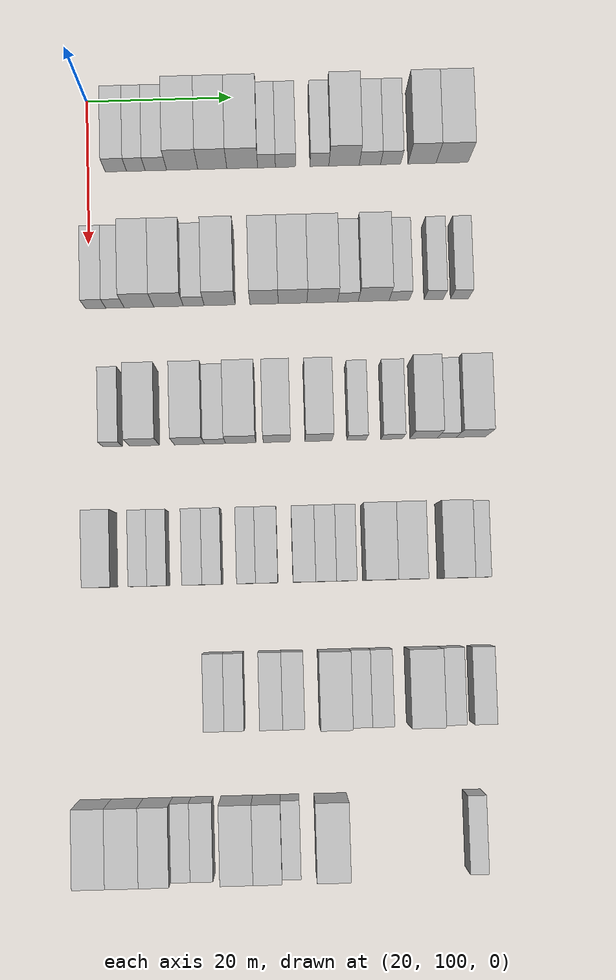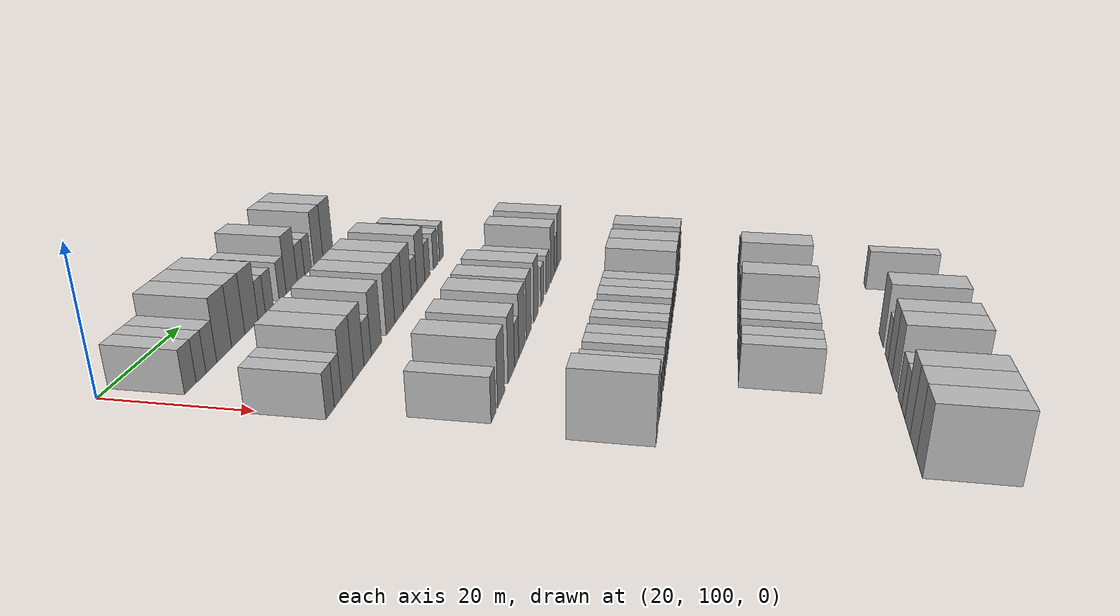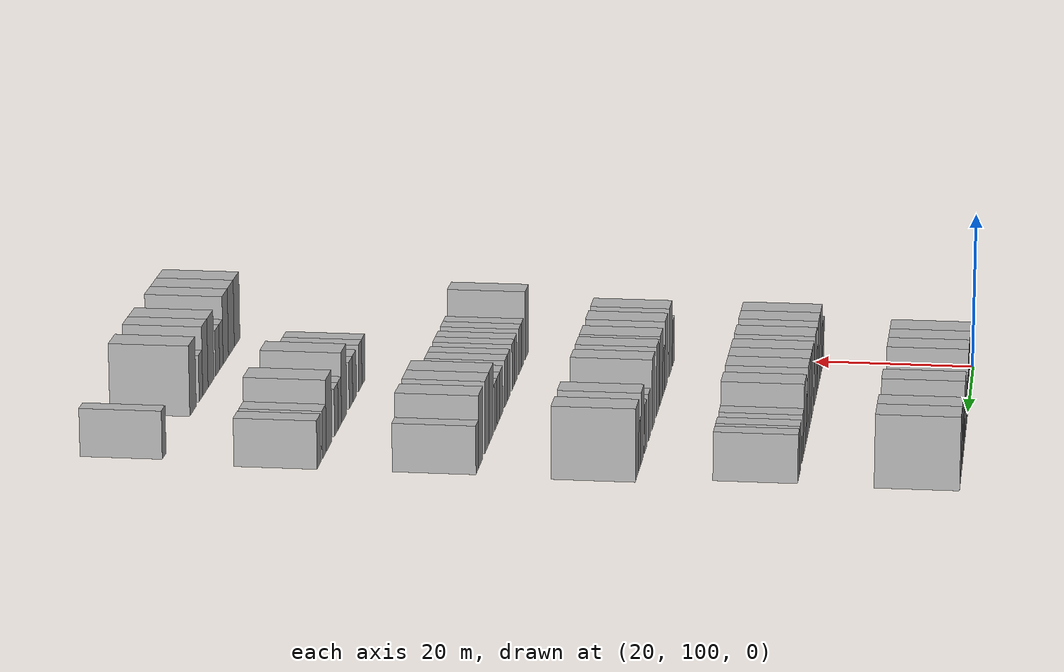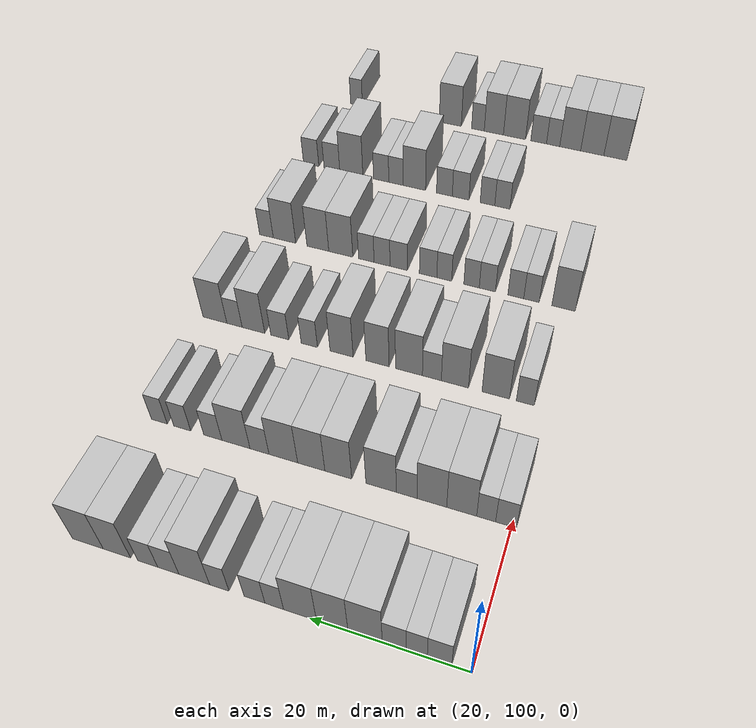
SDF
<sdf version="1.6">
 <world name="default">
  <model name="building_117">
   <static>1</static>
   <pose>25.0000 103.8893 0 0.000000 0.000000 0.000000</pose>
   <link name="link">
    <pose>0 0 3.00 0 0 0</pose>
    <collision name="collision"><geometry><box><size>10.0000 2.9440 6.0000</size></box></geometry></collision>
    <visual name="visual">
     <cast_shadows>0</cast_shadows>
     <geometry><box><size>10.0000 2.9440 6.0000</size></box></geometry>
     <material>
      <script>
       <uri>model://HANNAS_wall/materials/scripts</uri>
       <uri>model://HANNAS_wall/materials/textures</uri>
       <name>vrc/HANNAS_wall</name>
      </script>
     </material>
    </visual>
   </link>
  </model>
  <model name="building_118">
   <static>1</static>
   <pose>25.0000 106.6412 0 0.000000 0.000000 0.000000</pose>
   <link name="link">
    <pose>0 0 3.00 0 0 0</pose>
    <collision name="collision"><geometry><box><size>10.0000 2.5597 6.0000</size></box></geometry></collision>
    <visual name="visual">
     <cast_shadows>0</cast_shadows>
     <geometry><box><size>10.0000 2.5597 6.0000</size></box></geometry>
     <material>
      <script>
       <uri>model://HANNAS_wall/materials/scripts</uri>
       <uri>model://HANNAS_wall/materials/textures</uri>
       <name>vrc/HANNAS_wall</name>
      </script>
     </material>
    </visual>
   </link>
  </model>
  <model name="building_119">
   <static>1</static>
   <pose>25.0000 109.3910 0 0.000000 0.000000 0.000000</pose>
   <link name="link">
    <pose>0 0 3.00 0 0 0</pose>
    <collision name="collision"><geometry><box><size>10.0000 2.9399 6.0000</size></box></geometry></collision>
    <visual name="visual">
     <cast_shadows>0</cast_shadows>
     <geometry><box><size>10.0000 2.9399 6.0000</size></box></geometry>
     <material>
      <script>
       <uri>model://HANNAS_wall/materials/scripts</uri>
       <uri>model://HANNAS_wall/materials/textures</uri>
       <name>vrc/HANNAS_wall</name>
      </script>
     </material>
    </visual>
   </link>
  </model>
  <model name="building_120">
   <static>1</static>
   <pose>25.0000 113.0023 0 0.000000 0.000000 0.000000</pose>
   <link name="link">
    <pose>0 0 4.50 0 0 0</pose>
    <collision name="collision"><geometry><box><size>10.0000 4.2828 9.0000</size></box></geometry></collision>
    <visual name="visual">
     <cast_shadows>0</cast_shadows>
     <geometry><box><size>10.0000 4.2828 9.0000</size></box></geometry>
     <material>
      <script>
       <uri>model://HANNAS_wall/materials/scripts</uri>
       <uri>model://HANNAS_wall/materials/textures</uri>
       <name>vrc/HANNAS_wall</name>
      </script>
     </material>
    </visual>
   </link>
  </model>
  <model name="building_121">
   <static>1</static>
   <pose>25.0000 117.1433 0 0.000000 0.000000 0.000000</pose>
   <link name="link">
    <pose>0 0 4.50 0 0 0</pose>
    <collision name="collision"><geometry><box><size>10.0000 3.9991 9.0000</size></box></geometry></collision>
    <visual name="visual">
     <cast_shadows>0</cast_shadows>
     <geometry><box><size>10.0000 3.9991 9.0000</size></box></geometry>
     <material>
      <script>
       <uri>model://HANNAS_wall/materials/scripts</uri>
       <uri>model://HANNAS_wall/materials/textures</uri>
       <name>vrc/HANNAS_wall</name>
      </script>
     </material>
    </visual>
   </link>
  </model>
  <model name="building_122">
   <static>1</static>
   <pose>25.0000 121.2584 0 0.000000 0.000000 0.000000</pose>
   <link name="link">
    <pose>0 0 4.50 0 0 0</pose>
    <collision name="collision"><geometry><box><size>10.0000 4.2312 9.0000</size></box></geometry></collision>
    <visual name="visual">
     <cast_shadows>0</cast_shadows>
     <geometry><box><size>10.0000 4.2312 9.0000</size></box></geometry>
     <material>
      <script>
       <uri>model://HANNAS_wall/materials/scripts</uri>
       <uri>model://HANNAS_wall/materials/textures</uri>
       <name>vrc/HANNAS_wall</name>
      </script>
     </material>
    </visual>
   </link>
  </model>
  <model name="building_123">
   <static>1</static>
   <pose>25.0000 124.5934 0 0.000000 0.000000 0.000000</pose>
   <link name="link">
    <pose>0 0 3.00 0 0 0</pose>
    <collision name="collision"><geometry><box><size>10.0000 2.4387 6.0000</size></box></geometry></collision>
    <visual name="visual">
     <cast_shadows>0</cast_shadows>
     <geometry><box><size>10.0000 2.4387 6.0000</size></box></geometry>
     <material>
      <script>
       <uri>model://HANNAS_wall/materials/scripts</uri>
       <uri>model://HANNAS_wall/materials/textures</uri>
       <name>vrc/HANNAS_wall</name>
      </script>
     </material>
    </visual>
   </link>
  </model>
  <model name="building_124">
   <static>1</static>
   <pose>25.0000 127.1882 0 0.000000 0.000000 0.000000</pose>
   <link name="link">
    <pose>0 0 3.00 0 0 0</pose>
    <collision name="collision"><geometry><box><size>10.0000 2.7509 6.0000</size></box></geometry></collision>
    <visual name="visual">
     <cast_shadows>0</cast_shadows>
     <geometry><box><size>10.0000 2.7509 6.0000</size></box></geometry>
     <material>
      <script>
       <uri>model://HANNAS_wall/materials/scripts</uri>
       <uri>model://HANNAS_wall/materials/textures</uri>
       <name>vrc/HANNAS_wall</name>
      </script>
     </material>
    </visual>
   </link>
  </model>
  <model name="building_125">
   <static>1</static>
   <pose>25.0000 131.8658 0 0.000000 0.000000 0.000000</pose>
   <link name="link">
    <pose>0 0 3.00 0 0 0</pose>
    <collision name="collision"><geometry><box><size>10.0000 2.6044 6.0000</size></box></geometry></collision>
    <visual name="visual">
     <cast_shadows>0</cast_shadows>
     <geometry><box><size>10.0000 2.6044 6.0000</size></box></geometry>
     <material>
      <script>
       <uri>model://HANNAS_wall/materials/scripts</uri>
       <uri>model://HANNAS_wall/materials/textures</uri>
       <name>vrc/HANNAS_wall</name>
      </script>
     </material>
    </visual>
   </link>
  </model>
  <model name="building_126">
   <static>1</static>
   <pose>25.0000 135.2582 0 0.000000 0.000000 0.000000</pose>
   <link name="link">
    <pose>0 0 4.50 0 0 0</pose>
    <collision name="collision"><geometry><box><size>10.0000 4.1804 9.0000</size></box></geometry></collision>
    <visual name="visual">
     <cast_shadows>0</cast_shadows>
     <geometry><box><size>10.0000 4.1804 9.0000</size></box></geometry>
     <material>
      <script>
       <uri>model://HANNAS_wall/materials/scripts</uri>
       <uri>model://HANNAS_wall/materials/textures</uri>
       <name>vrc/HANNAS_wall</name>
      </script>
     </material>
    </visual>
   </link>
  </model>
  <model name="building_127">
   <static>1</static>
   <pose>25.0000 138.8129 0 0.000000 0.000000 0.000000</pose>
   <link name="link">
    <pose>0 0 3.00 0 0 0</pose>
    <collision name="collision"><geometry><box><size>10.0000 2.9291 6.0000</size></box></geometry></collision>
    <visual name="visual">
     <cast_shadows>0</cast_shadows>
     <geometry><box><size>10.0000 2.9291 6.0000</size></box></geometry>
     <material>
      <script>
       <uri>model://HANNAS_wall/materials/scripts</uri>
       <uri>model://HANNAS_wall/materials/textures</uri>
       <name>vrc/HANNAS_wall</name>
      </script>
     </material>
    </visual>
   </link>
  </model>
  <model name="building_128">
   <static>1</static>
   <pose>25.0000 141.6678 0 0.000000 0.000000 0.000000</pose>
   <link name="link">
    <pose>0 0 3.00 0 0 0</pose>
    <collision name="collision"><geometry><box><size>10.0000 2.7806 6.0000</size></box></geometry></collision>
    <visual name="visual">
     <cast_shadows>0</cast_shadows>
     <geometry><box><size>10.0000 2.7806 6.0000</size></box></geometry>
     <material>
      <script>
       <uri>model://HANNAS_wall/materials/scripts</uri>
       <uri>model://HANNAS_wall/materials/textures</uri>
       <name>vrc/HANNAS_wall</name>
      </script>
     </material>
    </visual>
   </link>
  </model>
  <model name="building_129">
   <static>1</static>
   <pose>25.0000 145.9909 0 0.000000 0.000000 0.000000</pose>
   <link name="link">
    <pose>0 0 4.50 0 0 0</pose>
    <collision name="collision"><geometry><box><size>10.0000 3.8657 9.0000</size></box></geometry></collision>
    <visual name="visual">
     <cast_shadows>0</cast_shadows>
     <geometry><box><size>10.0000 3.8657 9.0000</size></box></geometry>
     <material>
      <script>
       <uri>model://HANNAS_wall/materials/scripts</uri>
       <uri>model://HANNAS_wall/materials/textures</uri>
       <name>vrc/HANNAS_wall</name>
      </script>
     </material>
    </visual>
   </link>
  </model>
  <model name="building_130">
   <static>1</static>
   <pose>25.0000 150.1322 0 0.000000 0.000000 0.000000</pose>
   <link name="link">
    <pose>0 0 4.50 0 0 0</pose>
    <collision name="collision"><geometry><box><size>10.0000 4.4169 9.0000</size></box></geometry></collision>
    <visual name="visual">
     <cast_shadows>0</cast_shadows>
     <geometry><box><size>10.0000 4.4169 9.0000</size></box></geometry>
     <material>
      <script>
       <uri>model://HANNAS_wall/materials/scripts</uri>
       <uri>model://HANNAS_wall/materials/textures</uri>
       <name>vrc/HANNAS_wall</name>
      </script>
     </material>
    </visual>
   </link>
  </model>
  <model name="building_282">
   <static>1</static>
   <pose>44.0000 100.8136 0 0.000000 0.000000 0.000000</pose>
   <link name="link">
    <pose>0 0 3.00 0 0 0</pose>
    <collision name="collision"><geometry><box><size>10.0000 2.7490 6.0000</size></box></geometry></collision>
    <visual name="visual">
     <cast_shadows>0</cast_shadows>
     <geometry><box><size>10.0000 2.7490 6.0000</size></box></geometry>
     <material>
      <script>
       <uri>model://HANNAS_wall/materials/scripts</uri>
       <uri>model://HANNAS_wall/materials/textures</uri>
       <name>vrc/HANNAS_wall</name>
      </script>
     </material>
    </visual>
   </link>
  </model>
  <model name="building_283">
   <static>1</static>
   <pose>44.0000 103.4413 0 0.000000 0.000000 0.000000</pose>
   <link name="link">
    <pose>0 0 3.00 0 0 0</pose>
    <collision name="collision"><geometry><box><size>10.0000 2.5063 6.0000</size></box></geometry></collision>
    <visual name="visual">
     <cast_shadows>0</cast_shadows>
     <geometry><box><size>10.0000 2.5063 6.0000</size></box></geometry>
     <material>
      <script>
       <uri>model://HANNAS_wall/materials/scripts</uri>
       <uri>model://HANNAS_wall/materials/textures</uri>
       <name>vrc/HANNAS_wall</name>
      </script>
     </material>
    </visual>
   </link>
  </model>
  <model name="building_284">
   <static>1</static>
   <pose>44.0000 106.7073 0 0.000000 0.000000 0.000000</pose>
   <link name="link">
    <pose>0 0 4.50 0 0 0</pose>
    <collision name="collision"><geometry><box><size>10.0000 4.0258 9.0000</size></box></geometry></collision>
    <visual name="visual">
     <cast_shadows>0</cast_shadows>
     <geometry><box><size>10.0000 4.0258 9.0000</size></box></geometry>
     <material>
      <script>
       <uri>model://HANNAS_wall/materials/scripts</uri>
       <uri>model://HANNAS_wall/materials/textures</uri>
       <name>vrc/HANNAS_wall</name>
      </script>
     </material>
    </visual>
   </link>
  </model>
  <model name="building_285">
   <static>1</static>
   <pose>44.0000 110.7387 0 0.000000 0.000000 0.000000</pose>
   <link name="link">
    <pose>0 0 4.50 0 0 0</pose>
    <collision name="collision"><geometry><box><size>10.0000 4.0370 9.0000</size></box></geometry></collision>
    <visual name="visual">
     <cast_shadows>0</cast_shadows>
     <geometry><box><size>10.0000 4.0370 9.0000</size></box></geometry>
     <material>
      <script>
       <uri>model://HANNAS_wall/materials/scripts</uri>
       <uri>model://HANNAS_wall/materials/textures</uri>
       <name>vrc/HANNAS_wall</name>
      </script>
     </material>
    </visual>
   </link>
  </model>
  <model name="building_286">
   <static>1</static>
   <pose>44.0000 114.1866 0 0.000000 0.000000 0.000000</pose>
   <link name="link">
    <pose>0 0 3.00 0 0 0</pose>
    <collision name="collision"><geometry><box><size>10.0000 2.8586 6.0000</size></box></geometry></collision>
    <visual name="visual">
     <cast_shadows>0</cast_shadows>
     <geometry><box><size>10.0000 2.8586 6.0000</size></box></geometry>
     <material>
      <script>
       <uri>model://HANNAS_wall/materials/scripts</uri>
       <uri>model://HANNAS_wall/materials/textures</uri>
       <name>vrc/HANNAS_wall</name>
      </script>
     </material>
    </visual>
   </link>
  </model>
  <model name="building_287">
   <static>1</static>
   <pose>44.0000 117.7352 0 0.000000 0.000000 0.000000</pose>
   <link name="link">
    <pose>0 0 4.50 0 0 0</pose>
    <collision name="collision"><geometry><box><size>10.0000 4.2386 9.0000</size></box></geometry></collision>
    <visual name="visual">
     <cast_shadows>0</cast_shadows>
     <geometry><box><size>10.0000 4.2386 9.0000</size></box></geometry>
     <material>
      <script>
       <uri>model://HANNAS_wall/materials/scripts</uri>
       <uri>model://HANNAS_wall/materials/textures</uri>
       <name>vrc/HANNAS_wall</name>
      </script>
     </material>
    </visual>
   </link>
  </model>
  <model name="building_288">
   <static>1</static>
   <pose>44.0000 123.7677 0 0.000000 0.000000 0.000000</pose>
   <link name="link">
    <pose>0 0 4.50 0 0 0</pose>
    <collision name="collision"><geometry><box><size>10.0000 3.8264 9.0000</size></box></geometry></collision>
    <visual name="visual">
     <cast_shadows>0</cast_shadows>
     <geometry><box><size>10.0000 3.8264 9.0000</size></box></geometry>
     <material>
      <script>
       <uri>model://HANNAS_wall/materials/scripts</uri>
       <uri>model://HANNAS_wall/materials/textures</uri>
       <name>vrc/HANNAS_wall</name>
      </script>
     </material>
    </visual>
   </link>
  </model>
  <model name="building_289">
   <static>1</static>
   <pose>44.0000 127.6472 0 0.000000 0.000000 0.000000</pose>
   <link name="link">
    <pose>0 0 4.50 0 0 0</pose>
    <collision name="collision"><geometry><box><size>10.0000 3.9325 9.0000</size></box></geometry></collision>
    <visual name="visual">
     <cast_shadows>0</cast_shadows>
     <geometry><box><size>10.0000 3.9325 9.0000</size></box></geometry>
     <material>
      <script>
       <uri>model://HANNAS_wall/materials/scripts</uri>
       <uri>model://HANNAS_wall/materials/textures</uri>
       <name>vrc/HANNAS_wall</name>
      </script>
     </material>
    </visual>
   </link>
  </model>
  <model name="building_290">
   <static>1</static>
   <pose>44.0000 131.7123 0 0.000000 0.000000 0.000000</pose>
   <link name="link">
    <pose>0 0 4.50 0 0 0</pose>
    <collision name="collision"><geometry><box><size>10.0000 4.1976 9.0000</size></box></geometry></collision>
    <visual name="visual">
     <cast_shadows>0</cast_shadows>
     <geometry><box><size>10.0000 4.1976 9.0000</size></box></geometry>
     <material>
      <script>
       <uri>model://HANNAS_wall/materials/scripts</uri>
       <uri>model://HANNAS_wall/materials/textures</uri>
       <name>vrc/HANNAS_wall</name>
      </script>
     </material>
    </visual>
   </link>
  </model>
  <model name="building_291">
   <static>1</static>
   <pose>44.0000 135.2204 0 0.000000 0.000000 0.000000</pose>
   <link name="link">
    <pose>0 0 3.00 0 0 0</pose>
    <collision name="collision"><geometry><box><size>10.0000 2.8186 6.0000</size></box></geometry></collision>
    <visual name="visual">
     <cast_shadows>0</cast_shadows>
     <geometry><box><size>10.0000 2.8186 6.0000</size></box></geometry>
     <material>
      <script>
       <uri>model://HANNAS_wall/materials/scripts</uri>
       <uri>model://HANNAS_wall/materials/textures</uri>
       <name>vrc/HANNAS_wall</name>
      </script>
     </material>
    </visual>
   </link>
  </model>
  <model name="building_292">
   <static>1</static>
   <pose>44.0000 138.7312 0 0.000000 0.000000 0.000000</pose>
   <link name="link">
    <pose>0 0 4.50 0 0 0</pose>
    <collision name="collision"><geometry><box><size>10.0000 4.2031 9.0000</size></box></geometry></collision>
    <visual name="visual">
     <cast_shadows>0</cast_shadows>
     <geometry><box><size>10.0000 4.2031 9.0000</size></box></geometry>
     <material>
      <script>
       <uri>model://HANNAS_wall/materials/scripts</uri>
       <uri>model://HANNAS_wall/materials/textures</uri>
       <name>vrc/HANNAS_wall</name>
      </script>
     </material>
    </visual>
   </link>
  </model>
  <model name="building_293">
   <static>1</static>
   <pose>44.0000 142.2147 0 0.000000 0.000000 0.000000</pose>
   <link name="link">
    <pose>0 0 3.00 0 0 0</pose>
    <collision name="collision"><geometry><box><size>10.0000 2.7639 6.0000</size></box></geometry></collision>
    <visual name="visual">
     <cast_shadows>0</cast_shadows>
     <geometry><box><size>10.0000 2.7639 6.0000</size></box></geometry>
     <material>
      <script>
       <uri>model://HANNAS_wall/materials/scripts</uri>
       <uri>model://HANNAS_wall/materials/textures</uri>
       <name>vrc/HANNAS_wall</name>
      </script>
     </material>
    </visual>
   </link>
  </model>
  <model name="building_294">
   <static>1</static>
   <pose>44.0000 146.9058 0 0.000000 0.000000 0.000000</pose>
   <link name="link">
    <pose>0 0 3.00 0 0 0</pose>
    <collision name="collision"><geometry><box><size>10.0000 2.6184 6.0000</size></box></geometry></collision>
    <visual name="visual">
     <cast_shadows>0</cast_shadows>
     <geometry><box><size>10.0000 2.6184 6.0000</size></box></geometry>
     <material>
      <script>
       <uri>model://HANNAS_wall/materials/scripts</uri>
       <uri>model://HANNAS_wall/materials/textures</uri>
       <name>vrc/HANNAS_wall</name>
      </script>
     </material>
    </visual>
   </link>
  </model>
  <model name="building_295">
   <static>1</static>
   <pose>44.0000 150.4486 0 0.000000 0.000000 0.000000</pose>
   <link name="link">
    <pose>0 0 3.00 0 0 0</pose>
    <collision name="collision"><geometry><box><size>10.0000 2.4671 6.0000</size></box></geometry></collision>
    <visual name="visual">
     <cast_shadows>0</cast_shadows>
     <geometry><box><size>10.0000 2.4671 6.0000</size></box></geometry>
     <material>
      <script>
       <uri>model://HANNAS_wall/materials/scripts</uri>
       <uri>model://HANNAS_wall/materials/textures</uri>
       <name>vrc/HANNAS_wall</name>
      </script>
     </material>
    </visual>
   </link>
  </model>
  <model name="building_453">
   <static>1</static>
   <pose>63.0000 102.8185 0 0.000000 0.000000 0.000000</pose>
   <link name="link">
    <pose>0 0 3.00 0 0 0</pose>
    <collision name="collision"><geometry><box><size>10.0000 2.6042 6.0000</size></box></geometry></collision>
    <visual name="visual">
     <cast_shadows>0</cast_shadows>
     <geometry><box><size>10.0000 2.6042 6.0000</size></box></geometry>
     <material>
      <script>
       <uri>model://HANNAS_wall/materials/scripts</uri>
       <uri>model://HANNAS_wall/materials/textures</uri>
       <name>vrc/HANNAS_wall</name>
      </script>
     </material>
    </visual>
   </link>
  </model>
  <model name="building_454">
   <static>1</static>
   <pose>63.0000 107.1384 0 0.000000 0.000000 0.000000</pose>
   <link name="link">
    <pose>0 0 4.50 0 0 0</pose>
    <collision name="collision"><geometry><box><size>10.0000 4.0356 9.0000</size></box></geometry></collision>
    <visual name="visual">
     <cast_shadows>0</cast_shadows>
     <geometry><box><size>10.0000 4.0356 9.0000</size></box></geometry>
     <material>
      <script>
       <uri>model://HANNAS_wall/materials/scripts</uri>
       <uri>model://HANNAS_wall/materials/textures</uri>
       <name>vrc/HANNAS_wall</name>
      </script>
     </material>
    </visual>
   </link>
  </model>
  <model name="building_455">
   <static>1</static>
   <pose>63.0000 113.1920 0 0.000000 0.000000 0.000000</pose>
   <link name="link">
    <pose>0 0 4.50 0 0 0</pose>
    <collision name="collision"><geometry><box><size>10.0000 4.0717 9.0000</size></box></geometry></collision>
    <visual name="visual">
     <cast_shadows>0</cast_shadows>
     <geometry><box><size>10.0000 4.0717 9.0000</size></box></geometry>
     <material>
      <script>
       <uri>model://HANNAS_wall/materials/scripts</uri>
       <uri>model://HANNAS_wall/materials/textures</uri>
       <name>vrc/HANNAS_wall</name>
      </script>
     </material>
    </visual>
   </link>
  </model>
  <model name="building_456">
   <static>1</static>
   <pose>63.0000 116.6578 0 0.000000 0.000000 0.000000</pose>
   <link name="link">
    <pose>0 0 3.00 0 0 0</pose>
    <collision name="collision"><geometry><box><size>10.0000 2.8598 6.0000</size></box></geometry></collision>
    <visual name="visual">
     <cast_shadows>0</cast_shadows>
     <geometry><box><size>10.0000 2.8598 6.0000</size></box></geometry>
     <material>
      <script>
       <uri>model://HANNAS_wall/materials/scripts</uri>
       <uri>model://HANNAS_wall/materials/textures</uri>
       <name>vrc/HANNAS_wall</name>
      </script>
     </material>
    </visual>
   </link>
  </model>
  <model name="building_457">
   <static>1</static>
   <pose>63.0000 120.1425 0 0.000000 0.000000 0.000000</pose>
   <link name="link">
    <pose>0 0 4.50 0 0 0</pose>
    <collision name="collision"><geometry><box><size>10.0000 4.1096 9.0000</size></box></geometry></collision>
    <visual name="visual">
     <cast_shadows>0</cast_shadows>
     <geometry><box><size>10.0000 4.1096 9.0000</size></box></geometry>
     <material>
      <script>
       <uri>model://HANNAS_wall/materials/scripts</uri>
       <uri>model://HANNAS_wall/materials/textures</uri>
       <name>vrc/HANNAS_wall</name>
      </script>
     </material>
    </visual>
   </link>
  </model>
  <model name="building_458">
   <static>1</static>
   <pose>63.0000 125.0026 0 0.000000 0.000000 0.000000</pose>
   <link name="link">
    <pose>0 0 4.50 0 0 0</pose>
    <collision name="collision"><geometry><box><size>10.0000 3.6106 9.0000</size></box></geometry></collision>
    <visual name="visual">
     <cast_shadows>0</cast_shadows>
     <geometry><box><size>10.0000 3.6106 9.0000</size></box></geometry>
     <material>
      <script>
       <uri>model://HANNAS_wall/materials/scripts</uri>
       <uri>model://HANNAS_wall/materials/textures</uri>
       <name>vrc/HANNAS_wall</name>
      </script>
     </material>
    </visual>
   </link>
  </model>
  <model name="building_459">
   <static>1</static>
   <pose>63.0000 130.6389 0 0.000000 0.000000 0.000000</pose>
   <link name="link">
    <pose>0 0 4.50 0 0 0</pose>
    <collision name="collision"><geometry><box><size>10.0000 3.6619 9.0000</size></box></geometry></collision>
    <visual name="visual">
     <cast_shadows>0</cast_shadows>
     <geometry><box><size>10.0000 3.6619 9.0000</size></box></geometry>
     <material>
      <script>
       <uri>model://HANNAS_wall/materials/scripts</uri>
       <uri>model://HANNAS_wall/materials/textures</uri>
       <name>vrc/HANNAS_wall</name>
      </script>
     </material>
    </visual>
   </link>
  </model>
  <model name="building_460">
   <static>1</static>
   <pose>63.0000 135.7860 0 0.000000 0.000000 0.000000</pose>
   <link name="link">
    <pose>0 0 3.00 0 0 0</pose>
    <collision name="collision"><geometry><box><size>10.0000 2.6324 6.0000</size></box></geometry></collision>
    <visual name="visual">
     <cast_shadows>0</cast_shadows>
     <geometry><box><size>10.0000 2.6324 6.0000</size></box></geometry>
     <material>
      <script>
       <uri>model://HANNAS_wall/materials/scripts</uri>
       <uri>model://HANNAS_wall/materials/textures</uri>
       <name>vrc/HANNAS_wall</name>
      </script>
     </material>
    </visual>
   </link>
  </model>
  <model name="building_461">
   <static>1</static>
   <pose>63.0000 140.5695 0 0.000000 0.000000 0.000000</pose>
   <link name="link">
    <pose>0 0 3.00 0 0 0</pose>
    <collision name="collision"><geometry><box><size>10.0000 2.9345 6.0000</size></box></geometry></collision>
    <visual name="visual">
     <cast_shadows>0</cast_shadows>
     <geometry><box><size>10.0000 2.9345 6.0000</size></box></geometry>
     <material>
      <script>
       <uri>model://HANNAS_wall/materials/scripts</uri>
       <uri>model://HANNAS_wall/materials/textures</uri>
       <name>vrc/HANNAS_wall</name>
      </script>
     </material>
    </visual>
   </link>
  </model>
  <model name="building_462">
   <static>1</static>
   <pose>63.0000 144.9108 0 0.000000 0.000000 0.000000</pose>
   <link name="link">
    <pose>0 0 4.50 0 0 0</pose>
    <collision name="collision"><geometry><box><size>10.0000 3.7481 9.0000</size></box></geometry></collision>
    <visual name="visual">
     <cast_shadows>0</cast_shadows>
     <geometry><box><size>10.0000 3.7481 9.0000</size></box></geometry>
     <material>
      <script>
       <uri>model://HANNAS_wall/materials/scripts</uri>
       <uri>model://HANNAS_wall/materials/textures</uri>
       <name>vrc/HANNAS_wall</name>
      </script>
     </material>
    </visual>
   </link>
  </model>
  <model name="building_463">
   <static>1</static>
   <pose>63.0000 148.0643 0 0.000000 0.000000 0.000000</pose>
   <link name="link">
    <pose>0 0 3.00 0 0 0</pose>
    <collision name="collision"><geometry><box><size>10.0000 2.5590 6.0000</size></box></geometry></collision>
    <visual name="visual">
     <cast_shadows>0</cast_shadows>
     <geometry><box><size>10.0000 2.5590 6.0000</size></box></geometry>
     <material>
      <script>
       <uri>model://HANNAS_wall/materials/scripts</uri>
       <uri>model://HANNAS_wall/materials/textures</uri>
       <name>vrc/HANNAS_wall</name>
      </script>
     </material>
    </visual>
   </link>
  </model>
  <model name="building_464">
   <static>1</static>
   <pose>63.0000 151.3480 0 0.000000 0.000000 0.000000</pose>
   <link name="link">
    <pose>0 0 4.50 0 0 0</pose>
    <collision name="collision"><geometry><box><size>10.0000 4.0084 9.0000</size></box></geometry></collision>
    <visual name="visual">
     <cast_shadows>0</cast_shadows>
     <geometry><box><size>10.0000 4.0084 9.0000</size></box></geometry>
     <material>
      <script>
       <uri>model://HANNAS_wall/materials/scripts</uri>
       <uri>model://HANNAS_wall/materials/textures</uri>
       <name>vrc/HANNAS_wall</name>
      </script>
     </material>
    </visual>
   </link>
  </model>
  <model name="building_630">
   <static>1</static>
   <pose>82.0000 101.3021 0 0.000000 0.000000 0.000000</pose>
   <link name="link">
    <pose>0 0 4.50 0 0 0</pose>
    <collision name="collision"><geometry><box><size>10.0000 3.6711 9.0000</size></box></geometry></collision>
    <visual name="visual">
     <cast_shadows>0</cast_shadows>
     <geometry><box><size>10.0000 3.6711 9.0000</size></box></geometry>
     <material>
      <script>
       <uri>model://HANNAS_wall/materials/scripts</uri>
       <uri>model://HANNAS_wall/materials/textures</uri>
       <name>vrc/HANNAS_wall</name>
      </script>
     </material>
    </visual>
   </link>
  </model>
  <model name="building_631">
   <static>1</static>
   <pose>82.0000 106.3619 0 0.000000 0.000000 0.000000</pose>
   <link name="link">
    <pose>0 0 3.00 0 0 0</pose>
    <collision name="collision"><geometry><box><size>10.0000 2.4485 6.0000</size></box></geometry></collision>
    <visual name="visual">
     <cast_shadows>0</cast_shadows>
     <geometry><box><size>10.0000 2.4485 6.0000</size></box></geometry>
     <material>
      <script>
       <uri>model://HANNAS_wall/materials/scripts</uri>
       <uri>model://HANNAS_wall/materials/textures</uri>
       <name>vrc/HANNAS_wall</name>
      </script>
     </material>
    </visual>
   </link>
  </model>
  <model name="building_632">
   <static>1</static>
   <pose>82.0000 108.8607 0 0.000000 0.000000 0.000000</pose>
   <link name="link">
    <pose>0 0 3.00 0 0 0</pose>
    <collision name="collision"><geometry><box><size>10.0000 2.5491 6.0000</size></box></geometry></collision>
    <visual name="visual">
     <cast_shadows>0</cast_shadows>
     <geometry><box><size>10.0000 2.5491 6.0000</size></box></geometry>
     <material>
      <script>
       <uri>model://HANNAS_wall/materials/scripts</uri>
       <uri>model://HANNAS_wall/materials/textures</uri>
       <name>vrc/HANNAS_wall</name>
      </script>
     </material>
    </visual>
   </link>
  </model>
  <model name="building_633">
   <static>1</static>
   <pose>82.0000 113.4495 0 0.000000 0.000000 0.000000</pose>
   <link name="link">
    <pose>0 0 3.00 0 0 0</pose>
    <collision name="collision"><geometry><box><size>10.0000 2.6284 6.0000</size></box></geometry></collision>
    <visual name="visual">
     <cast_shadows>0</cast_shadows>
     <geometry><box><size>10.0000 2.6284 6.0000</size></box></geometry>
     <material>
      <script>
       <uri>model://HANNAS_wall/materials/scripts</uri>
       <uri>model://HANNAS_wall/materials/textures</uri>
       <name>vrc/HANNAS_wall</name>
      </script>
     </material>
    </visual>
   </link>
  </model>
  <model name="building_634">
   <static>1</static>
   <pose>82.0000 116.0262 0 0.000000 0.000000 0.000000</pose>
   <link name="link">
    <pose>0 0 3.00 0 0 0</pose>
    <collision name="collision"><geometry><box><size>10.0000 2.5250 6.0000</size></box></geometry></collision>
    <visual name="visual">
     <cast_shadows>0</cast_shadows>
     <geometry><box><size>10.0000 2.5250 6.0000</size></box></geometry>
     <material>
      <script>
       <uri>model://HANNAS_wall/materials/scripts</uri>
       <uri>model://HANNAS_wall/materials/textures</uri>
       <name>vrc/HANNAS_wall</name>
      </script>
     </material>
    </visual>
   </link>
  </model>
  <model name="building_635">
   <static>1</static>
   <pose>82.0000 120.5225 0 0.000000 0.000000 0.000000</pose>
   <link name="link">
    <pose>0 0 3.00 0 0 0</pose>
    <collision name="collision"><geometry><box><size>10.0000 2.4677 6.0000</size></box></geometry></collision>
    <visual name="visual">
     <cast_shadows>0</cast_shadows>
     <geometry><box><size>10.0000 2.4677 6.0000</size></box></geometry>
     <material>
      <script>
       <uri>model://HANNAS_wall/materials/scripts</uri>
       <uri>model://HANNAS_wall/materials/textures</uri>
       <name>vrc/HANNAS_wall</name>
      </script>
     </material>
    </visual>
   </link>
  </model>
  <model name="building_636">
   <static>1</static>
   <pose>82.0000 123.2142 0 0.000000 0.000000 0.000000</pose>
   <link name="link">
    <pose>0 0 3.00 0 0 0</pose>
    <collision name="collision"><geometry><box><size>10.0000 2.9156 6.0000</size></box></geometry></collision>
    <visual name="visual">
     <cast_shadows>0</cast_shadows>
     <geometry><box><size>10.0000 2.9156 6.0000</size></box></geometry>
     <material>
      <script>
       <uri>model://HANNAS_wall/materials/scripts</uri>
       <uri>model://HANNAS_wall/materials/textures</uri>
       <name>vrc/HANNAS_wall</name>
      </script>
     </material>
    </visual>
   </link>
  </model>
  <model name="building_637">
   <static>1</static>
   <pose>82.0000 128.1516 0 0.000000 0.000000 0.000000</pose>
   <link name="link">
    <pose>0 0 3.00 0 0 0</pose>
    <collision name="collision"><geometry><box><size>10.0000 2.9593 6.0000</size></box></geometry></collision>
    <visual name="visual">
     <cast_shadows>0</cast_shadows>
     <geometry><box><size>10.0000 2.9593 6.0000</size></box></geometry>
     <material>
      <script>
       <uri>model://HANNAS_wall/materials/scripts</uri>
       <uri>model://HANNAS_wall/materials/textures</uri>
       <name>vrc/HANNAS_wall</name>
      </script>
     </material>
    </visual>
   </link>
  </model>
  <model name="building_638">
   <static>1</static>
   <pose>82.0000 130.9929 0 0.000000 0.000000 0.000000</pose>
   <link name="link">
    <pose>0 0 3.00 0 0 0</pose>
    <collision name="collision"><geometry><box><size>10.0000 2.7233 6.0000</size></box></geometry></collision>
    <visual name="visual">
     <cast_shadows>0</cast_shadows>
     <geometry><box><size>10.0000 2.7233 6.0000</size></box></geometry>
     <material>
      <script>
       <uri>model://HANNAS_wall/materials/scripts</uri>
       <uri>model://HANNAS_wall/materials/textures</uri>
       <name>vrc/HANNAS_wall</name>
      </script>
     </material>
    </visual>
   </link>
  </model>
  <model name="building_639">
   <static>1</static>
   <pose>82.0000 133.6886 0 0.000000 0.000000 0.000000</pose>
   <link name="link">
    <pose>0 0 3.00 0 0 0</pose>
    <collision name="collision"><geometry><box><size>10.0000 2.6681 6.0000</size></box></geometry></collision>
    <visual name="visual">
     <cast_shadows>0</cast_shadows>
     <geometry><box><size>10.0000 2.6681 6.0000</size></box></geometry>
     <material>
      <script>
       <uri>model://HANNAS_wall/materials/scripts</uri>
       <uri>model://HANNAS_wall/materials/textures</uri>
       <name>vrc/HANNAS_wall</name>
      </script>
     </material>
    </visual>
   </link>
  </model>
  <model name="building_640">
   <static>1</static>
   <pose>82.0000 138.1222 0 0.000000 0.000000 0.000000</pose>
   <link name="link">
    <pose>0 0 4.50 0 0 0</pose>
    <collision name="collision"><geometry><box><size>10.0000 4.1990 9.0000</size></box></geometry></collision>
    <visual name="visual">
     <cast_shadows>0</cast_shadows>
     <geometry><box><size>10.0000 4.1990 9.0000</size></box></geometry>
     <material>
      <script>
       <uri>model://HANNAS_wall/materials/scripts</uri>
       <uri>model://HANNAS_wall/materials/textures</uri>
       <name>vrc/HANNAS_wall</name>
      </script>
     </material>
    </visual>
   </link>
  </model>
  <model name="building_641">
   <static>1</static>
   <pose>82.0000 142.1455 0 0.000000 0.000000 0.000000</pose>
   <link name="link">
    <pose>0 0 4.50 0 0 0</pose>
    <collision name="collision"><geometry><box><size>10.0000 3.8476 9.0000</size></box></geometry></collision>
    <visual name="visual">
     <cast_shadows>0</cast_shadows>
     <geometry><box><size>10.0000 3.8476 9.0000</size></box></geometry>
     <material>
      <script>
       <uri>model://HANNAS_wall/materials/scripts</uri>
       <uri>model://HANNAS_wall/materials/textures</uri>
       <name>vrc/HANNAS_wall</name>
      </script>
     </material>
    </visual>
   </link>
  </model>
  <model name="building_642">
   <static>1</static>
   <pose>82.0000 148.0848 0 0.000000 0.000000 0.000000</pose>
   <link name="link">
    <pose>0 0 4.50 0 0 0</pose>
    <collision name="collision"><geometry><box><size>10.0000 4.0309 9.0000</size></box></geometry></collision>
    <visual name="visual">
     <cast_shadows>0</cast_shadows>
     <geometry><box><size>10.0000 4.0309 9.0000</size></box></geometry>
     <material>
      <script>
       <uri>model://HANNAS_wall/materials/scripts</uri>
       <uri>model://HANNAS_wall/materials/textures</uri>
       <name>vrc/HANNAS_wall</name>
      </script>
     </material>
    </visual>
   </link>
  </model>
  <model name="building_643">
   <static>1</static>
   <pose>82.0000 151.3364 0 0.000000 0.000000 0.000000</pose>
   <link name="link">
    <pose>0 0 3.00 0 0 0</pose>
    <collision name="collision"><geometry><box><size>10.0000 2.4724 6.0000</size></box></geometry></collision>
    <visual name="visual">
     <cast_shadows>0</cast_shadows>
     <geometry><box><size>10.0000 2.4724 6.0000</size></box></geometry>
     <material>
      <script>
       <uri>model://HANNAS_wall/materials/scripts</uri>
       <uri>model://HANNAS_wall/materials/textures</uri>
       <name>vrc/HANNAS_wall</name>
      </script>
     </material>
    </visual>
   </link>
  </model>
  <model name="building_803">
   <static>1</static>
   <pose>101.0000 115.8798 0 0.000000 0.000000 0.000000</pose>
   <link name="link">
    <pose>0 0 3.00 0 0 0</pose>
    <collision name="collision"><geometry><box><size>10.0000 2.6754 6.0000</size></box></geometry></collision>
    <visual name="visual">
     <cast_shadows>0</cast_shadows>
     <geometry><box><size>10.0000 2.6754 6.0000</size></box></geometry>
     <material>
      <script>
       <uri>model://HANNAS_wall/materials/scripts</uri>
       <uri>model://HANNAS_wall/materials/textures</uri>
       <name>vrc/HANNAS_wall</name>
      </script>
     </material>
    </visual>
   </link>
  </model>
  <model name="building_804">
   <static>1</static>
   <pose>101.0000 118.5153 0 0.000000 0.000000 0.000000</pose>
   <link name="link">
    <pose>0 0 3.00 0 0 0</pose>
    <collision name="collision"><geometry><box><size>10.0000 2.5956 6.0000</size></box></geometry></collision>
    <visual name="visual">
     <cast_shadows>0</cast_shadows>
     <geometry><box><size>10.0000 2.5956 6.0000</size></box></geometry>
     <material>
      <script>
       <uri>model://HANNAS_wall/materials/scripts</uri>
       <uri>model://HANNAS_wall/materials/textures</uri>
       <name>vrc/HANNAS_wall</name>
      </script>
     </material>
    </visual>
   </link>
  </model>
  <model name="building_805">
   <static>1</static>
   <pose>101.0000 123.3075 0 0.000000 0.000000 0.000000</pose>
   <link name="link">
    <pose>0 0 3.00 0 0 0</pose>
    <collision name="collision"><geometry><box><size>10.0000 2.9888 6.0000</size></box></geometry></collision>
    <visual name="visual">
     <cast_shadows>0</cast_shadows>
     <geometry><box><size>10.0000 2.9888 6.0000</size></box></geometry>
     <material>
      <script>
       <uri>model://HANNAS_wall/materials/scripts</uri>
       <uri>model://HANNAS_wall/materials/textures</uri>
       <name>vrc/HANNAS_wall</name>
      </script>
     </material>
    </visual>
   </link>
  </model>
  <model name="building_806">
   <static>1</static>
   <pose>101.0000 126.2323 0 0.000000 0.000000 0.000000</pose>
   <link name="link">
    <pose>0 0 3.00 0 0 0</pose>
    <collision name="collision"><geometry><box><size>10.0000 2.8607 6.0000</size></box></geometry></collision>
    <visual name="visual">
     <cast_shadows>0</cast_shadows>
     <geometry><box><size>10.0000 2.8607 6.0000</size></box></geometry>
     <material>
      <script>
       <uri>model://HANNAS_wall/materials/scripts</uri>
       <uri>model://HANNAS_wall/materials/textures</uri>
       <name>vrc/HANNAS_wall</name>
      </script>
     </material>
    </visual>
   </link>
  </model>
  <model name="building_807">
   <static>1</static>
   <pose>101.0000 131.7267 0 0.000000 0.000000 0.000000</pose>
   <link name="link">
    <pose>0 0 4.50 0 0 0</pose>
    <collision name="collision"><geometry><box><size>10.0000 4.1281 9.0000</size></box></geometry></collision>
    <visual name="visual">
     <cast_shadows>0</cast_shadows>
     <geometry><box><size>10.0000 4.1281 9.0000</size></box></geometry>
     <material>
      <script>
       <uri>model://HANNAS_wall/materials/scripts</uri>
       <uri>model://HANNAS_wall/materials/textures</uri>
       <name>vrc/HANNAS_wall</name>
      </script>
     </material>
    </visual>
   </link>
  </model>
  <model name="building_808">
   <static>1</static>
   <pose>101.0000 135.1142 0 0.000000 0.000000 0.000000</pose>
   <link name="link">
    <pose>0 0 3.00 0 0 0</pose>
    <collision name="collision"><geometry><box><size>10.0000 2.6470 6.0000</size></box></geometry></collision>
    <visual name="visual">
     <cast_shadows>0</cast_shadows>
     <geometry><box><size>10.0000 2.6470 6.0000</size></box></geometry>
     <material>
      <script>
       <uri>model://HANNAS_wall/materials/scripts</uri>
       <uri>model://HANNAS_wall/materials/textures</uri>
       <name>vrc/HANNAS_wall</name>
      </script>
     </material>
    </visual>
   </link>
  </model>
  <model name="building_809">
   <static>1</static>
   <pose>101.0000 137.8618 0 0.000000 0.000000 0.000000</pose>
   <link name="link">
    <pose>0 0 3.00 0 0 0</pose>
    <collision name="collision"><geometry><box><size>10.0000 2.8481 6.0000</size></box></geometry></collision>
    <visual name="visual">
     <cast_shadows>0</cast_shadows>
     <geometry><box><size>10.0000 2.8481 6.0000</size></box></geometry>
     <material>
      <script>
       <uri>model://HANNAS_wall/materials/scripts</uri>
       <uri>model://HANNAS_wall/materials/textures</uri>
       <name>vrc/HANNAS_wall</name>
      </script>
     </material>
    </visual>
   </link>
  </model>
  <model name="building_810">
   <static>1</static>
   <pose>101.0000 143.4796 0 0.000000 0.000000 0.000000</pose>
   <link name="link">
    <pose>0 0 4.50 0 0 0</pose>
    <collision name="collision"><geometry><box><size>10.0000 4.3876 9.0000</size></box></geometry></collision>
    <visual name="visual">
     <cast_shadows>0</cast_shadows>
     <geometry><box><size>10.0000 4.3876 9.0000</size></box></geometry>
     <material>
      <script>
       <uri>model://HANNAS_wall/materials/scripts</uri>
       <uri>model://HANNAS_wall/materials/textures</uri>
       <name>vrc/HANNAS_wall</name>
      </script>
     </material>
    </visual>
   </link>
  </model>
  <model name="building_811">
   <static>1</static>
   <pose>101.0000 147.1733 0 0.000000 0.000000 0.000000</pose>
   <link name="link">
    <pose>0 0 3.00 0 0 0</pose>
    <collision name="collision"><geometry><box><size>10.0000 2.9998 6.0000</size></box></geometry></collision>
    <visual name="visual">
     <cast_shadows>0</cast_shadows>
     <geometry><box><size>10.0000 2.9998 6.0000</size></box></geometry>
     <material>
      <script>
       <uri>model://HANNAS_wall/materials/scripts</uri>
       <uri>model://HANNAS_wall/materials/textures</uri>
       <name>vrc/HANNAS_wall</name>
      </script>
     </material>
    </visual>
   </link>
  </model>
  <model name="building_812">
   <static>1</static>
   <pose>101.0000 151.1541 0 0.000000 0.000000 0.000000</pose>
   <link name="link">
    <pose>0 0 3.00 0 0 0</pose>
    <collision name="collision"><geometry><box><size>10.0000 2.9619 6.0000</size></box></geometry></collision>
    <visual name="visual">
     <cast_shadows>0</cast_shadows>
     <geometry><box><size>10.0000 2.9619 6.0000</size></box></geometry>
     <material>
      <script>
       <uri>model://HANNAS_wall/materials/scripts</uri>
       <uri>model://HANNAS_wall/materials/textures</uri>
       <name>vrc/HANNAS_wall</name>
      </script>
     </material>
    </visual>
   </link>
  </model>
  <model name="building_981">
   <static>1</static>
   <pose>120.0000 99.7262 0 0.000000 0.000000 0.000000</pose>
   <link name="link">
    <pose>0 0 4.50 0 0 0</pose>
    <collision name="collision"><geometry><box><size>10.0000 4.1681 9.0000</size></box></geometry></collision>
    <visual name="visual">
     <cast_shadows>0</cast_shadows>
     <geometry><box><size>10.0000 4.1681 9.0000</size></box></geometry>
     <material>
      <script>
       <uri>model://HANNAS_wall/materials/scripts</uri>
       <uri>model://HANNAS_wall/materials/textures</uri>
       <name>vrc/HANNAS_wall</name>
      </script>
     </material>
    </visual>
   </link>
  </model>
  <model name="building_982">
   <static>1</static>
   <pose>120.0000 103.9347 0 0.000000 0.000000 0.000000</pose>
   <link name="link">
    <pose>0 0 4.50 0 0 0</pose>
    <collision name="collision"><geometry><box><size>10.0000 4.2490 9.0000</size></box></geometry></collision>
    <visual name="visual">
     <cast_shadows>0</cast_shadows>
     <geometry><box><size>10.0000 4.2490 9.0000</size></box></geometry>
     <material>
      <script>
       <uri>model://HANNAS_wall/materials/scripts</uri>
       <uri>model://HANNAS_wall/materials/textures</uri>
       <name>vrc/HANNAS_wall</name>
      </script>
     </material>
    </visual>
   </link>
  </model>
  <model name="building_983">
   <static>1</static>
   <pose>120.0000 107.9922 0 0.000000 0.000000 0.000000</pose>
   <link name="link">
    <pose>0 0 4.50 0 0 0</pose>
    <collision name="collision"><geometry><box><size>10.0000 3.8659 9.0000</size></box></geometry></collision>
    <visual name="visual">
     <cast_shadows>0</cast_shadows>
     <geometry><box><size>10.0000 3.8659 9.0000</size></box></geometry>
     <material>
      <script>
       <uri>model://HANNAS_wall/materials/scripts</uri>
       <uri>model://HANNAS_wall/materials/textures</uri>
       <name>vrc/HANNAS_wall</name>
      </script>
     </material>
    </visual>
   </link>
  </model>
  <model name="building_984">
   <static>1</static>
   <pose>120.0000 111.1669 0 0.000000 0.000000 0.000000</pose>
   <link name="link">
    <pose>0 0 3.00 0 0 0</pose>
    <collision name="collision"><geometry><box><size>10.0000 2.4836 6.0000</size></box></geometry></collision>
    <visual name="visual">
     <cast_shadows>0</cast_shadows>
     <geometry><box><size>10.0000 2.4836 6.0000</size></box></geometry>
     <material>
      <script>
       <uri>model://HANNAS_wall/materials/scripts</uri>
       <uri>model://HANNAS_wall/materials/textures</uri>
       <name>vrc/HANNAS_wall</name>
      </script>
     </material>
    </visual>
   </link>
  </model>
  <model name="building_985">
   <static>1</static>
   <pose>120.0000 113.8786 0 0.000000 0.000000 0.000000</pose>
   <link name="link">
    <pose>0 0 3.00 0 0 0</pose>
    <collision name="collision"><geometry><box><size>10.0000 2.9398 6.0000</size></box></geometry></collision>
    <visual name="visual">
     <cast_shadows>0</cast_shadows>
     <geometry><box><size>10.0000 2.9398 6.0000</size></box></geometry>
     <material>
      <script>
       <uri>model://HANNAS_wall/materials/scripts</uri>
       <uri>model://HANNAS_wall/materials/textures</uri>
       <name>vrc/HANNAS_wall</name>
      </script>
     </material>
    </visual>
   </link>
  </model>
  <model name="building_986">
   <static>1</static>
   <pose>120.0000 118.4407 0 0.000000 0.000000 0.000000</pose>
   <link name="link">
    <pose>0 0 4.50 0 0 0</pose>
    <collision name="collision"><geometry><box><size>10.0000 4.1843 9.0000</size></box></geometry></collision>
    <visual name="visual">
     <cast_shadows>0</cast_shadows>
     <geometry><box><size>10.0000 4.1843 9.0000</size></box></geometry>
     <material>
      <script>
       <uri>model://HANNAS_wall/materials/scripts</uri>
       <uri>model://HANNAS_wall/materials/textures</uri>
       <name>vrc/HANNAS_wall</name>
      </script>
     </material>
    </visual>
   </link>
  </model>
  <model name="building_987">
   <static>1</static>
   <pose>120.0000 122.3752 0 0.000000 0.000000 0.000000</pose>
   <link name="link">
    <pose>0 0 4.50 0 0 0</pose>
    <collision name="collision"><geometry><box><size>10.0000 3.6847 9.0000</size></box></geometry></collision>
    <visual name="visual">
     <cast_shadows>0</cast_shadows>
     <geometry><box><size>10.0000 3.6847 9.0000</size></box></geometry>
     <material>
      <script>
       <uri>model://HANNAS_wall/materials/scripts</uri>
       <uri>model://HANNAS_wall/materials/textures</uri>
       <name>vrc/HANNAS_wall</name>
      </script>
     </material>
    </visual>
   </link>
  </model>
  <model name="building_988">
   <static>1</static>
   <pose>120.0000 125.4394 0 0.000000 0.000000 0.000000</pose>
   <link name="link">
    <pose>0 0 3.00 0 0 0</pose>
    <collision name="collision"><geometry><box><size>10.0000 2.4437 6.0000</size></box></geometry></collision>
    <visual name="visual">
     <cast_shadows>0</cast_shadows>
     <geometry><box><size>10.0000 2.4437 6.0000</size></box></geometry>
     <material>
      <script>
       <uri>model://HANNAS_wall/materials/scripts</uri>
       <uri>model://HANNAS_wall/materials/textures</uri>
       <name>vrc/HANNAS_wall</name>
      </script>
     </material>
    </visual>
   </link>
  </model>
  <model name="building_989">
   <static>1</static>
   <pose>120.0000 130.8151 0 0.000000 0.000000 0.000000</pose>
   <link name="link">
    <pose>0 0 4.50 0 0 0</pose>
    <collision name="collision"><geometry><box><size>10.0000 4.3077 9.0000</size></box></geometry></collision>
    <visual name="visual">
     <cast_shadows>0</cast_shadows>
     <geometry><box><size>10.0000 4.3077 9.0000</size></box></geometry>
     <material>
      <script>
       <uri>model://HANNAS_wall/materials/scripts</uri>
       <uri>model://HANNAS_wall/materials/textures</uri>
       <name>vrc/HANNAS_wall</name>
      </script>
     </material>
    </visual>
   </link>
  </model>
  <model name="building_990">
   <static>1</static>
   <pose>120.0000 149.5935 0 0.000000 0.000000 0.000000</pose>
   <link name="link">
    <pose>0 0 3.00 0 0 0</pose>
    <collision name="collision"><geometry><box><size>10.0000 2.4164 6.0000</size></box></geometry></collision>
    <visual name="visual">
     <cast_shadows>0</cast_shadows>
     <geometry><box><size>10.0000 2.4164 6.0000</size></box></geometry>
     <material>
      <script>
       <uri>model://HANNAS_wall/materials/scripts</uri>
       <uri>model://HANNAS_wall/materials/textures</uri>
       <name>vrc/HANNAS_wall</name>
      </script>
     </material>
    </visual>
   </link>
  </model>
 </world>
</sdf>
